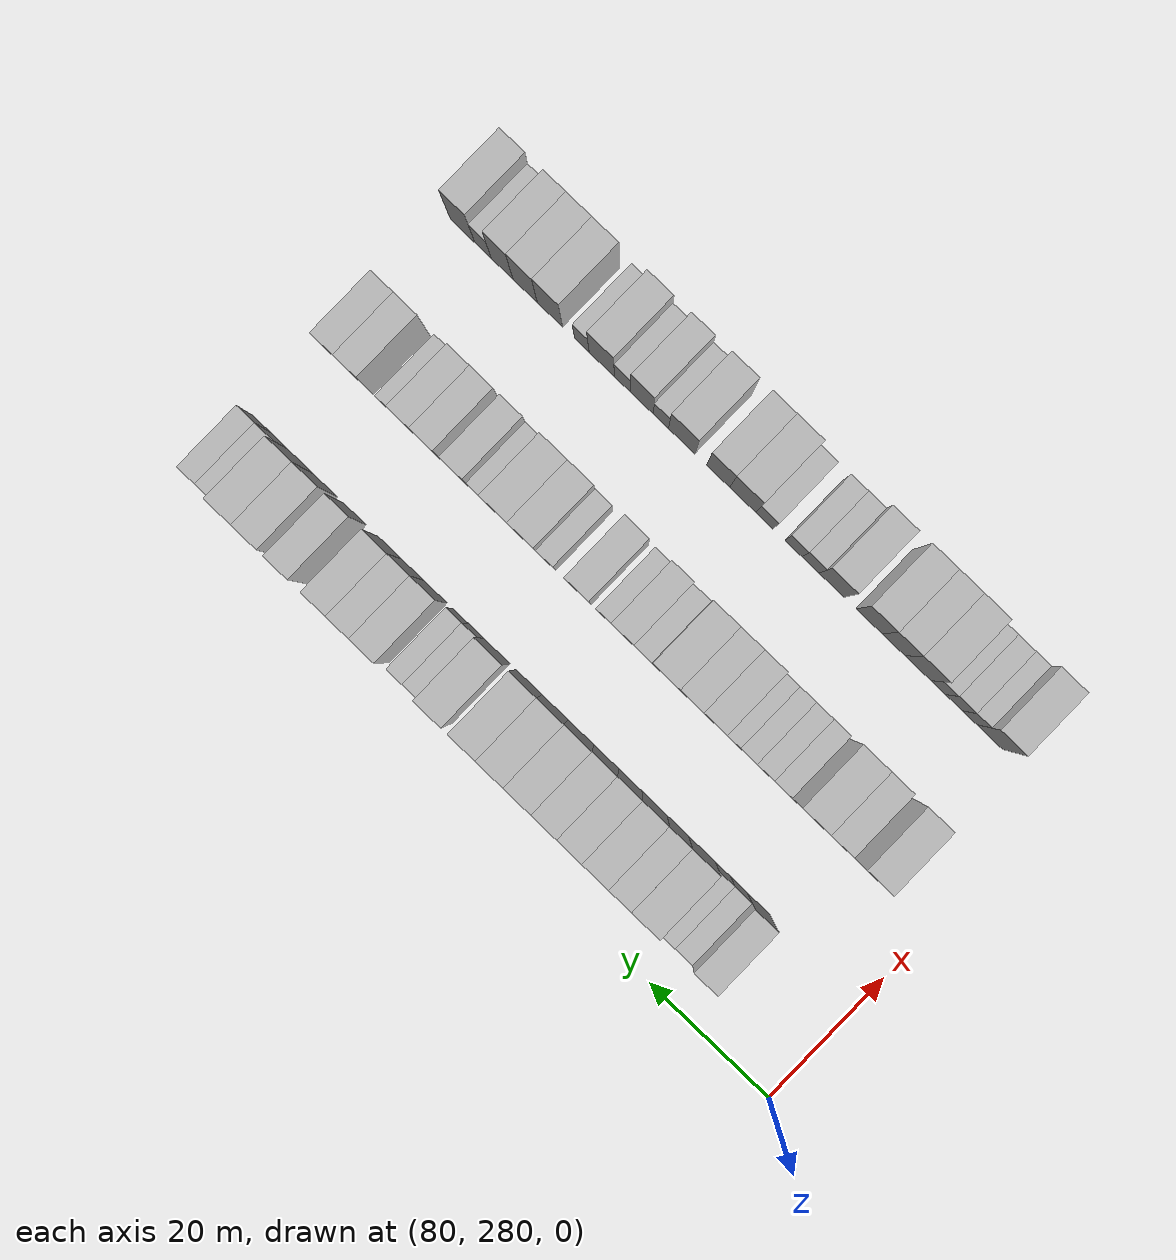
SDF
<sdf version="1.6">
 <world name="default">
  <model name="building_723">
   <static>1</static>
   <pose>91.0000 297.2292 0 0.000000 0.000000 0.000000</pose>
   <link name="link">
    <pose>0 0 4.50 0 0 0</pose>
    <collision name="collision"><geometry><box><size>10.0000 3.7799 9.0000</size></box></geometry></collision>
    <visual name="visual">
     <cast_shadows>0</cast_shadows>
     <geometry><box><size>10.0000 3.7799 9.0000</size></box></geometry>
     <material>
      <script>
       <uri>model://HANNAS_wall/materials/scripts</uri>
       <uri>model://HANNAS_wall/materials/textures</uri>
       <name>vrc/HANNAS_wall</name>
      </script>
     </material>
    </visual>
   </link>
  </model>
  <model name="building_724">
   <static>1</static>
   <pose>91.0000 300.5063 0 0.000000 0.000000 0.000000</pose>
   <link name="link">
    <pose>0 0 3.00 0 0 0</pose>
    <collision name="collision"><geometry><box><size>10.0000 2.7742 6.0000</size></box></geometry></collision>
    <visual name="visual">
     <cast_shadows>0</cast_shadows>
     <geometry><box><size>10.0000 2.7742 6.0000</size></box></geometry>
     <material>
      <script>
       <uri>model://HANNAS_wall/materials/scripts</uri>
       <uri>model://HANNAS_wall/materials/textures</uri>
       <name>vrc/HANNAS_wall</name>
      </script>
     </material>
    </visual>
   </link>
  </model>
  <model name="building_725">
   <static>1</static>
   <pose>91.0000 303.1688 0 0.000000 0.000000 0.000000</pose>
   <link name="link">
    <pose>0 0 3.00 0 0 0</pose>
    <collision name="collision"><geometry><box><size>10.0000 2.5508 6.0000</size></box></geometry></collision>
    <visual name="visual">
     <cast_shadows>0</cast_shadows>
     <geometry><box><size>10.0000 2.5508 6.0000</size></box></geometry>
     <material>
      <script>
       <uri>model://HANNAS_wall/materials/scripts</uri>
       <uri>model://HANNAS_wall/materials/textures</uri>
       <name>vrc/HANNAS_wall</name>
      </script>
     </material>
    </visual>
   </link>
  </model>
  <model name="building_726">
   <static>1</static>
   <pose>91.0000 306.6930 0 0.000000 0.000000 0.000000</pose>
   <link name="link">
    <pose>0 0 4.50 0 0 0</pose>
    <collision name="collision"><geometry><box><size>10.0000 4.4976 9.0000</size></box></geometry></collision>
    <visual name="visual">
     <cast_shadows>0</cast_shadows>
     <geometry><box><size>10.0000 4.4976 9.0000</size></box></geometry>
     <material>
      <script>
       <uri>model://HANNAS_wall/materials/scripts</uri>
       <uri>model://HANNAS_wall/materials/textures</uri>
       <name>vrc/HANNAS_wall</name>
      </script>
     </material>
    </visual>
   </link>
  </model>
  <model name="building_727">
   <static>1</static>
   <pose>91.0000 310.7659 0 0.000000 0.000000 0.000000</pose>
   <link name="link">
    <pose>0 0 4.50 0 0 0</pose>
    <collision name="collision"><geometry><box><size>10.0000 3.6481 9.0000</size></box></geometry></collision>
    <visual name="visual">
     <cast_shadows>0</cast_shadows>
     <geometry><box><size>10.0000 3.6481 9.0000</size></box></geometry>
     <material>
      <script>
       <uri>model://HANNAS_wall/materials/scripts</uri>
       <uri>model://HANNAS_wall/materials/textures</uri>
       <name>vrc/HANNAS_wall</name>
      </script>
     </material>
    </visual>
   </link>
  </model>
  <model name="building_728">
   <static>1</static>
   <pose>91.0000 314.7011 0 0.000000 0.000000 0.000000</pose>
   <link name="link">
    <pose>0 0 4.50 0 0 0</pose>
    <collision name="collision"><geometry><box><size>10.0000 4.2223 9.0000</size></box></geometry></collision>
    <visual name="visual">
     <cast_shadows>0</cast_shadows>
     <geometry><box><size>10.0000 4.2223 9.0000</size></box></geometry>
     <material>
      <script>
       <uri>model://HANNAS_wall/materials/scripts</uri>
       <uri>model://HANNAS_wall/materials/textures</uri>
       <name>vrc/HANNAS_wall</name>
      </script>
     </material>
    </visual>
   </link>
  </model>
  <model name="building_729">
   <static>1</static>
   <pose>91.0000 318.7914 0 0.000000 0.000000 0.000000</pose>
   <link name="link">
    <pose>0 0 4.50 0 0 0</pose>
    <collision name="collision"><geometry><box><size>10.0000 3.9583 9.0000</size></box></geometry></collision>
    <visual name="visual">
     <cast_shadows>0</cast_shadows>
     <geometry><box><size>10.0000 3.9583 9.0000</size></box></geometry>
     <material>
      <script>
       <uri>model://HANNAS_wall/materials/scripts</uri>
       <uri>model://HANNAS_wall/materials/textures</uri>
       <name>vrc/HANNAS_wall</name>
      </script>
     </material>
    </visual>
   </link>
  </model>
  <model name="building_730">
   <static>1</static>
   <pose>91.0000 322.8060 0 0.000000 0.000000 0.000000</pose>
   <link name="link">
    <pose>0 0 4.50 0 0 0</pose>
    <collision name="collision"><geometry><box><size>10.0000 4.0709 9.0000</size></box></geometry></collision>
    <visual name="visual">
     <cast_shadows>0</cast_shadows>
     <geometry><box><size>10.0000 4.0709 9.0000</size></box></geometry>
     <material>
      <script>
       <uri>model://HANNAS_wall/materials/scripts</uri>
       <uri>model://HANNAS_wall/materials/textures</uri>
       <name>vrc/HANNAS_wall</name>
      </script>
     </material>
    </visual>
   </link>
  </model>
  <model name="building_731">
   <static>1</static>
   <pose>91.0000 327.0451 0 0.000000 0.000000 0.000000</pose>
   <link name="link">
    <pose>0 0 4.50 0 0 0</pose>
    <collision name="collision"><geometry><box><size>10.0000 4.4074 9.0000</size></box></geometry></collision>
    <visual name="visual">
     <cast_shadows>0</cast_shadows>
     <geometry><box><size>10.0000 4.4074 9.0000</size></box></geometry>
     <material>
      <script>
       <uri>model://HANNAS_wall/materials/scripts</uri>
       <uri>model://HANNAS_wall/materials/textures</uri>
       <name>vrc/HANNAS_wall</name>
      </script>
     </material>
    </visual>
   </link>
  </model>
  <model name="building_732">
   <static>1</static>
   <pose>91.0000 331.4389 0 0.000000 0.000000 0.000000</pose>
   <link name="link">
    <pose>0 0 4.50 0 0 0</pose>
    <collision name="collision"><geometry><box><size>10.0000 4.3802 9.0000</size></box></geometry></collision>
    <visual name="visual">
     <cast_shadows>0</cast_shadows>
     <geometry><box><size>10.0000 4.3802 9.0000</size></box></geometry>
     <material>
      <script>
       <uri>model://HANNAS_wall/materials/scripts</uri>
       <uri>model://HANNAS_wall/materials/textures</uri>
       <name>vrc/HANNAS_wall</name>
      </script>
     </material>
    </visual>
   </link>
  </model>
  <model name="building_733">
   <static>1</static>
   <pose>91.0000 335.8297 0 0.000000 0.000000 0.000000</pose>
   <link name="link">
    <pose>0 0 4.50 0 0 0</pose>
    <collision name="collision"><geometry><box><size>10.0000 4.4014 9.0000</size></box></geometry></collision>
    <visual name="visual">
     <cast_shadows>0</cast_shadows>
     <geometry><box><size>10.0000 4.4014 9.0000</size></box></geometry>
     <material>
      <script>
       <uri>model://HANNAS_wall/materials/scripts</uri>
       <uri>model://HANNAS_wall/materials/textures</uri>
       <name>vrc/HANNAS_wall</name>
      </script>
     </material>
    </visual>
   </link>
  </model>
  <model name="building_734">
   <static>1</static>
   <pose>91.0000 341.2791 0 0.000000 0.000000 0.000000</pose>
   <link name="link">
    <pose>0 0 4.50 0 0 0</pose>
    <collision name="collision"><geometry><box><size>10.0000 4.4975 9.0000</size></box></geometry></collision>
    <visual name="visual">
     <cast_shadows>0</cast_shadows>
     <geometry><box><size>10.0000 4.4975 9.0000</size></box></geometry>
     <material>
      <script>
       <uri>model://HANNAS_wall/materials/scripts</uri>
       <uri>model://HANNAS_wall/materials/textures</uri>
       <name>vrc/HANNAS_wall</name>
      </script>
     </material>
    </visual>
   </link>
  </model>
  <model name="building_735">
   <static>1</static>
   <pose>91.0000 344.7778 0 0.000000 0.000000 0.000000</pose>
   <link name="link">
    <pose>0 0 3.00 0 0 0</pose>
    <collision name="collision"><geometry><box><size>10.0000 2.4998 6.0000</size></box></geometry></collision>
    <visual name="visual">
     <cast_shadows>0</cast_shadows>
     <geometry><box><size>10.0000 2.4998 6.0000</size></box></geometry>
     <material>
      <script>
       <uri>model://HANNAS_wall/materials/scripts</uri>
       <uri>model://HANNAS_wall/materials/textures</uri>
       <name>vrc/HANNAS_wall</name>
      </script>
     </material>
    </visual>
   </link>
  </model>
  <model name="building_736">
   <static>1</static>
   <pose>91.0000 347.3329 0 0.000000 0.000000 0.000000</pose>
   <link name="link">
    <pose>0 0 3.00 0 0 0</pose>
    <collision name="collision"><geometry><box><size>10.0000 2.6105 6.0000</size></box></geometry></collision>
    <visual name="visual">
     <cast_shadows>0</cast_shadows>
     <geometry><box><size>10.0000 2.6105 6.0000</size></box></geometry>
     <material>
      <script>
       <uri>model://HANNAS_wall/materials/scripts</uri>
       <uri>model://HANNAS_wall/materials/textures</uri>
       <name>vrc/HANNAS_wall</name>
      </script>
     </material>
    </visual>
   </link>
  </model>
  <model name="building_737">
   <static>1</static>
   <pose>91.0000 351.6538 0 0.000000 0.000000 0.000000</pose>
   <link name="link">
    <pose>0 0 4.50 0 0 0</pose>
    <collision name="collision"><geometry><box><size>10.0000 4.0313 9.0000</size></box></geometry></collision>
    <visual name="visual">
     <cast_shadows>0</cast_shadows>
     <geometry><box><size>10.0000 4.0313 9.0000</size></box></geometry>
     <material>
      <script>
       <uri>model://HANNAS_wall/materials/scripts</uri>
       <uri>model://HANNAS_wall/materials/textures</uri>
       <name>vrc/HANNAS_wall</name>
      </script>
     </material>
    </visual>
   </link>
  </model>
  <model name="building_738">
   <static>1</static>
   <pose>91.0000 355.5054 0 0.000000 0.000000 0.000000</pose>
   <link name="link">
    <pose>0 0 4.50 0 0 0</pose>
    <collision name="collision"><geometry><box><size>10.0000 3.6720 9.0000</size></box></geometry></collision>
    <visual name="visual">
     <cast_shadows>0</cast_shadows>
     <geometry><box><size>10.0000 3.6720 9.0000</size></box></geometry>
     <material>
      <script>
       <uri>model://HANNAS_wall/materials/scripts</uri>
       <uri>model://HANNAS_wall/materials/textures</uri>
       <name>vrc/HANNAS_wall</name>
      </script>
     </material>
    </visual>
   </link>
  </model>
  <model name="building_739">
   <static>1</static>
   <pose>91.0000 359.3488 0 0.000000 0.000000 0.000000</pose>
   <link name="link">
    <pose>0 0 4.50 0 0 0</pose>
    <collision name="collision"><geometry><box><size>10.0000 4.0148 9.0000</size></box></geometry></collision>
    <visual name="visual">
     <cast_shadows>0</cast_shadows>
     <geometry><box><size>10.0000 4.0148 9.0000</size></box></geometry>
     <material>
      <script>
       <uri>model://HANNAS_wall/materials/scripts</uri>
       <uri>model://HANNAS_wall/materials/textures</uri>
       <name>vrc/HANNAS_wall</name>
      </script>
     </material>
    </visual>
   </link>
  </model>
  <model name="building_740">
   <static>1</static>
   <pose>91.0000 365.3117 0 0.000000 0.000000 0.000000</pose>
   <link name="link">
    <pose>0 0 4.50 0 0 0</pose>
    <collision name="collision"><geometry><box><size>10.0000 3.9110 9.0000</size></box></geometry></collision>
    <visual name="visual">
     <cast_shadows>0</cast_shadows>
     <geometry><box><size>10.0000 3.9110 9.0000</size></box></geometry>
     <material>
      <script>
       <uri>model://HANNAS_wall/materials/scripts</uri>
       <uri>model://HANNAS_wall/materials/textures</uri>
       <name>vrc/HANNAS_wall</name>
      </script>
     </material>
    </visual>
   </link>
  </model>
  <model name="building_741">
   <static>1</static>
   <pose>91.0000 370.3312 0 0.000000 0.000000 0.000000</pose>
   <link name="link">
    <pose>0 0 4.50 0 0 0</pose>
    <collision name="collision"><geometry><box><size>10.0000 4.1280 9.0000</size></box></geometry></collision>
    <visual name="visual">
     <cast_shadows>0</cast_shadows>
     <geometry><box><size>10.0000 4.1280 9.0000</size></box></geometry>
     <material>
      <script>
       <uri>model://HANNAS_wall/materials/scripts</uri>
       <uri>model://HANNAS_wall/materials/textures</uri>
       <name>vrc/HANNAS_wall</name>
      </script>
     </material>
    </visual>
   </link>
  </model>
  <model name="building_742">
   <static>1</static>
   <pose>91.0000 374.5619 0 0.000000 0.000000 0.000000</pose>
   <link name="link">
    <pose>0 0 4.50 0 0 0</pose>
    <collision name="collision"><geometry><box><size>10.0000 4.3332 9.0000</size></box></geometry></collision>
    <visual name="visual">
     <cast_shadows>0</cast_shadows>
     <geometry><box><size>10.0000 4.3332 9.0000</size></box></geometry>
     <material>
      <script>
       <uri>model://HANNAS_wall/materials/scripts</uri>
       <uri>model://HANNAS_wall/materials/textures</uri>
       <name>vrc/HANNAS_wall</name>
      </script>
     </material>
    </visual>
   </link>
  </model>
  <model name="building_743">
   <static>1</static>
   <pose>91.0000 378.2214 0 0.000000 0.000000 0.000000</pose>
   <link name="link">
    <pose>0 0 3.00 0 0 0</pose>
    <collision name="collision"><geometry><box><size>10.0000 2.9857 6.0000</size></box></geometry></collision>
    <visual name="visual">
     <cast_shadows>0</cast_shadows>
     <geometry><box><size>10.0000 2.9857 6.0000</size></box></geometry>
     <material>
      <script>
       <uri>model://HANNAS_wall/materials/scripts</uri>
       <uri>model://HANNAS_wall/materials/textures</uri>
       <name>vrc/HANNAS_wall</name>
      </script>
     </material>
    </visual>
   </link>
  </model>
  <model name="building_744">
   <static>1</static>
   <pose>91.0000 381.1802 0 0.000000 0.000000 0.000000</pose>
   <link name="link">
    <pose>0 0 3.00 0 0 0</pose>
    <collision name="collision"><geometry><box><size>10.0000 2.9320 6.0000</size></box></geometry></collision>
    <visual name="visual">
     <cast_shadows>0</cast_shadows>
     <geometry><box><size>10.0000 2.9320 6.0000</size></box></geometry>
     <material>
      <script>
       <uri>model://HANNAS_wall/materials/scripts</uri>
       <uri>model://HANNAS_wall/materials/textures</uri>
       <name>vrc/HANNAS_wall</name>
      </script>
     </material>
    </visual>
   </link>
  </model>
  <model name="building_910">
   <static>1</static>
   <pose>113.0000 290.8914 0 0.000000 0.000000 0.000000</pose>
   <link name="link">
    <pose>0 0 4.50 0 0 0</pose>
    <collision name="collision"><geometry><box><size>10.0000 4.2353 9.0000</size></box></geometry></collision>
    <visual name="visual">
     <cast_shadows>0</cast_shadows>
     <geometry><box><size>10.0000 4.2353 9.0000</size></box></geometry>
     <material>
      <script>
       <uri>model://HANNAS_wall/materials/scripts</uri>
       <uri>model://HANNAS_wall/materials/textures</uri>
       <name>vrc/HANNAS_wall</name>
      </script>
     </material>
    </visual>
   </link>
  </model>
  <model name="building_911">
   <static>1</static>
   <pose>113.0000 296.8457 0 0.000000 0.000000 0.000000</pose>
   <link name="link">
    <pose>0 0 4.50 0 0 0</pose>
    <collision name="collision"><geometry><box><size>10.0000 3.6734 9.0000</size></box></geometry></collision>
    <visual name="visual">
     <cast_shadows>0</cast_shadows>
     <geometry><box><size>10.0000 3.6734 9.0000</size></box></geometry>
     <material>
      <script>
       <uri>model://HANNAS_wall/materials/scripts</uri>
       <uri>model://HANNAS_wall/materials/textures</uri>
       <name>vrc/HANNAS_wall</name>
      </script>
     </material>
    </visual>
   </link>
  </model>
  <model name="building_912">
   <static>1</static>
   <pose>113.0000 300.9306 0 0.000000 0.000000 0.000000</pose>
   <link name="link">
    <pose>0 0 4.50 0 0 0</pose>
    <collision name="collision"><geometry><box><size>10.0000 4.4964 9.0000</size></box></geometry></collision>
    <visual name="visual">
     <cast_shadows>0</cast_shadows>
     <geometry><box><size>10.0000 4.4964 9.0000</size></box></geometry>
     <material>
      <script>
       <uri>model://HANNAS_wall/materials/scripts</uri>
       <uri>model://HANNAS_wall/materials/textures</uri>
       <name>vrc/HANNAS_wall</name>
      </script>
     </material>
    </visual>
   </link>
  </model>
  <model name="building_913">
   <static>1</static>
   <pose>113.0000 305.6085 0 0.000000 0.000000 0.000000</pose>
   <link name="link">
    <pose>0 0 3.00 0 0 0</pose>
    <collision name="collision"><geometry><box><size>10.0000 2.8595 6.0000</size></box></geometry></collision>
    <visual name="visual">
     <cast_shadows>0</cast_shadows>
     <geometry><box><size>10.0000 2.8595 6.0000</size></box></geometry>
     <material>
      <script>
       <uri>model://HANNAS_wall/materials/scripts</uri>
       <uri>model://HANNAS_wall/materials/textures</uri>
       <name>vrc/HANNAS_wall</name>
      </script>
     </material>
    </visual>
   </link>
  </model>
  <model name="building_914">
   <static>1</static>
   <pose>113.0000 308.4415 0 0.000000 0.000000 0.000000</pose>
   <link name="link">
    <pose>0 0 3.00 0 0 0</pose>
    <collision name="collision"><geometry><box><size>10.0000 2.8064 6.0000</size></box></geometry></collision>
    <visual name="visual">
     <cast_shadows>0</cast_shadows>
     <geometry><box><size>10.0000 2.8064 6.0000</size></box></geometry>
     <material>
      <script>
       <uri>model://HANNAS_wall/materials/scripts</uri>
       <uri>model://HANNAS_wall/materials/textures</uri>
       <name>vrc/HANNAS_wall</name>
      </script>
     </material>
    </visual>
   </link>
  </model>
  <model name="building_915">
   <static>1</static>
   <pose>113.0000 311.1661 0 0.000000 0.000000 0.000000</pose>
   <link name="link">
    <pose>0 0 3.00 0 0 0</pose>
    <collision name="collision"><geometry><box><size>10.0000 2.6429 6.0000</size></box></geometry></collision>
    <visual name="visual">
     <cast_shadows>0</cast_shadows>
     <geometry><box><size>10.0000 2.6429 6.0000</size></box></geometry>
     <material>
      <script>
       <uri>model://HANNAS_wall/materials/scripts</uri>
       <uri>model://HANNAS_wall/materials/textures</uri>
       <name>vrc/HANNAS_wall</name>
      </script>
     </material>
    </visual>
   </link>
  </model>
  <model name="building_916">
   <static>1</static>
   <pose>113.0000 313.7511 0 0.000000 0.000000 0.000000</pose>
   <link name="link">
    <pose>0 0 3.00 0 0 0</pose>
    <collision name="collision"><geometry><box><size>10.0000 2.5272 6.0000</size></box></geometry></collision>
    <visual name="visual">
     <cast_shadows>0</cast_shadows>
     <geometry><box><size>10.0000 2.5272 6.0000</size></box></geometry>
     <material>
      <script>
       <uri>model://HANNAS_wall/materials/scripts</uri>
       <uri>model://HANNAS_wall/materials/textures</uri>
       <name>vrc/HANNAS_wall</name>
      </script>
     </material>
    </visual>
   </link>
  </model>
  <model name="building_917">
   <static>1</static>
   <pose>113.0000 316.8632 0 0.000000 0.000000 0.000000</pose>
   <link name="link">
    <pose>0 0 4.50 0 0 0</pose>
    <collision name="collision"><geometry><box><size>10.0000 3.6969 9.0000</size></box></geometry></collision>
    <visual name="visual">
     <cast_shadows>0</cast_shadows>
     <geometry><box><size>10.0000 3.6969 9.0000</size></box></geometry>
     <material>
      <script>
       <uri>model://HANNAS_wall/materials/scripts</uri>
       <uri>model://HANNAS_wall/materials/textures</uri>
       <name>vrc/HANNAS_wall</name>
      </script>
     </material>
    </visual>
   </link>
  </model>
  <model name="building_918">
   <static>1</static>
   <pose>113.0000 320.5728 0 0.000000 0.000000 0.000000</pose>
   <link name="link">
    <pose>0 0 4.50 0 0 0</pose>
    <collision name="collision"><geometry><box><size>10.0000 3.7225 9.0000</size></box></geometry></collision>
    <visual name="visual">
     <cast_shadows>0</cast_shadows>
     <geometry><box><size>10.0000 3.7225 9.0000</size></box></geometry>
     <material>
      <script>
       <uri>model://HANNAS_wall/materials/scripts</uri>
       <uri>model://HANNAS_wall/materials/textures</uri>
       <name>vrc/HANNAS_wall</name>
      </script>
     </material>
    </visual>
   </link>
  </model>
  <model name="building_919">
   <static>1</static>
   <pose>113.0000 324.6318 0 0.000000 0.000000 0.000000</pose>
   <link name="link">
    <pose>0 0 4.50 0 0 0</pose>
    <collision name="collision"><geometry><box><size>10.0000 4.3954 9.0000</size></box></geometry></collision>
    <visual name="visual">
     <cast_shadows>0</cast_shadows>
     <geometry><box><size>10.0000 4.3954 9.0000</size></box></geometry>
     <material>
      <script>
       <uri>model://HANNAS_wall/materials/scripts</uri>
       <uri>model://HANNAS_wall/materials/textures</uri>
       <name>vrc/HANNAS_wall</name>
      </script>
     </material>
    </visual>
   </link>
  </model>
  <model name="building_920">
   <static>1</static>
   <pose>113.0000 328.3044 0 0.000000 0.000000 0.000000</pose>
   <link name="link">
    <pose>0 0 3.00 0 0 0</pose>
    <collision name="collision"><geometry><box><size>10.0000 2.9498 6.0000</size></box></geometry></collision>
    <visual name="visual">
     <cast_shadows>0</cast_shadows>
     <geometry><box><size>10.0000 2.9498 6.0000</size></box></geometry>
     <material>
      <script>
       <uri>model://HANNAS_wall/materials/scripts</uri>
       <uri>model://HANNAS_wall/materials/textures</uri>
       <name>vrc/HANNAS_wall</name>
      </script>
     </material>
    </visual>
   </link>
  </model>
  <model name="building_921">
   <static>1</static>
   <pose>113.0000 331.5804 0 0.000000 0.000000 0.000000</pose>
   <link name="link">
    <pose>0 0 4.50 0 0 0</pose>
    <collision name="collision"><geometry><box><size>10.0000 3.6023 9.0000</size></box></geometry></collision>
    <visual name="visual">
     <cast_shadows>0</cast_shadows>
     <geometry><box><size>10.0000 3.6023 9.0000</size></box></geometry>
     <material>
      <script>
       <uri>model://HANNAS_wall/materials/scripts</uri>
       <uri>model://HANNAS_wall/materials/textures</uri>
       <name>vrc/HANNAS_wall</name>
      </script>
     </material>
    </visual>
   </link>
  </model>
  <model name="building_922">
   <static>1</static>
   <pose>113.0000 334.6447 0 0.000000 0.000000 0.000000</pose>
   <link name="link">
    <pose>0 0 3.00 0 0 0</pose>
    <collision name="collision"><geometry><box><size>10.0000 2.5262 6.0000</size></box></geometry></collision>
    <visual name="visual">
     <cast_shadows>0</cast_shadows>
     <geometry><box><size>10.0000 2.5262 6.0000</size></box></geometry>
     <material>
      <script>
       <uri>model://HANNAS_wall/materials/scripts</uri>
       <uri>model://HANNAS_wall/materials/textures</uri>
       <name>vrc/HANNAS_wall</name>
      </script>
     </material>
    </visual>
   </link>
  </model>
  <model name="building_923">
   <static>1</static>
   <pose>113.0000 338.9010 0 0.000000 0.000000 0.000000</pose>
   <link name="link">
    <pose>0 0 4.50 0 0 0</pose>
    <collision name="collision"><geometry><box><size>10.0000 3.9865 9.0000</size></box></geometry></collision>
    <visual name="visual">
     <cast_shadows>0</cast_shadows>
     <geometry><box><size>10.0000 3.9865 9.0000</size></box></geometry>
     <material>
      <script>
       <uri>model://HANNAS_wall/materials/scripts</uri>
       <uri>model://HANNAS_wall/materials/textures</uri>
       <name>vrc/HANNAS_wall</name>
      </script>
     </material>
    </visual>
   </link>
  </model>
  <model name="building_924">
   <static>1</static>
   <pose>113.0000 344.2953 0 0.000000 0.000000 0.000000</pose>
   <link name="link">
    <pose>0 0 3.00 0 0 0</pose>
    <collision name="collision"><geometry><box><size>10.0000 2.8021 6.0000</size></box></geometry></collision>
    <visual name="visual">
     <cast_shadows>0</cast_shadows>
     <geometry><box><size>10.0000 2.8021 6.0000</size></box></geometry>
     <material>
      <script>
       <uri>model://HANNAS_wall/materials/scripts</uri>
       <uri>model://HANNAS_wall/materials/textures</uri>
       <name>vrc/HANNAS_wall</name>
      </script>
     </material>
    </visual>
   </link>
  </model>
  <model name="building_925">
   <static>1</static>
   <pose>113.0000 347.8179 0 0.000000 0.000000 0.000000</pose>
   <link name="link">
    <pose>0 0 4.50 0 0 0</pose>
    <collision name="collision"><geometry><box><size>10.0000 4.2431 9.0000</size></box></geometry></collision>
    <visual name="visual">
     <cast_shadows>0</cast_shadows>
     <geometry><box><size>10.0000 4.2431 9.0000</size></box></geometry>
     <material>
      <script>
       <uri>model://HANNAS_wall/materials/scripts</uri>
       <uri>model://HANNAS_wall/materials/textures</uri>
       <name>vrc/HANNAS_wall</name>
      </script>
     </material>
    </visual>
   </link>
  </model>
  <model name="building_926">
   <static>1</static>
   <pose>113.0000 352.1730 0 0.000000 0.000000 0.000000</pose>
   <link name="link">
    <pose>0 0 4.50 0 0 0</pose>
    <collision name="collision"><geometry><box><size>10.0000 4.4671 9.0000</size></box></geometry></collision>
    <visual name="visual">
     <cast_shadows>0</cast_shadows>
     <geometry><box><size>10.0000 4.4671 9.0000</size></box></geometry>
     <material>
      <script>
       <uri>model://HANNAS_wall/materials/scripts</uri>
       <uri>model://HANNAS_wall/materials/textures</uri>
       <name>vrc/HANNAS_wall</name>
      </script>
     </material>
    </visual>
   </link>
  </model>
  <model name="building_927">
   <static>1</static>
   <pose>113.0000 355.7085 0 0.000000 0.000000 0.000000</pose>
   <link name="link">
    <pose>0 0 3.00 0 0 0</pose>
    <collision name="collision"><geometry><box><size>10.0000 2.6039 6.0000</size></box></geometry></collision>
    <visual name="visual">
     <cast_shadows>0</cast_shadows>
     <geometry><box><size>10.0000 2.6039 6.0000</size></box></geometry>
     <material>
      <script>
       <uri>model://HANNAS_wall/materials/scripts</uri>
       <uri>model://HANNAS_wall/materials/textures</uri>
       <name>vrc/HANNAS_wall</name>
      </script>
     </material>
    </visual>
   </link>
  </model>
  <model name="building_928">
   <static>1</static>
   <pose>113.0000 358.8611 0 0.000000 0.000000 0.000000</pose>
   <link name="link">
    <pose>0 0 4.50 0 0 0</pose>
    <collision name="collision"><geometry><box><size>10.0000 3.7013 9.0000</size></box></geometry></collision>
    <visual name="visual">
     <cast_shadows>0</cast_shadows>
     <geometry><box><size>10.0000 3.7013 9.0000</size></box></geometry>
     <material>
      <script>
       <uri>model://HANNAS_wall/materials/scripts</uri>
       <uri>model://HANNAS_wall/materials/textures</uri>
       <name>vrc/HANNAS_wall</name>
      </script>
     </material>
    </visual>
   </link>
  </model>
  <model name="building_929">
   <static>1</static>
   <pose>113.0000 363.5988 0 0.000000 0.000000 0.000000</pose>
   <link name="link">
    <pose>0 0 4.50 0 0 0</pose>
    <collision name="collision"><geometry><box><size>10.0000 3.7739 9.0000</size></box></geometry></collision>
    <visual name="visual">
     <cast_shadows>0</cast_shadows>
     <geometry><box><size>10.0000 3.7739 9.0000</size></box></geometry>
     <material>
      <script>
       <uri>model://HANNAS_wall/materials/scripts</uri>
       <uri>model://HANNAS_wall/materials/textures</uri>
       <name>vrc/HANNAS_wall</name>
      </script>
     </material>
    </visual>
   </link>
  </model>
  <model name="building_930">
   <static>1</static>
   <pose>113.0000 367.2993 0 0.000000 0.000000 0.000000</pose>
   <link name="link">
    <pose>0 0 4.50 0 0 0</pose>
    <collision name="collision"><geometry><box><size>10.0000 3.6272 9.0000</size></box></geometry></collision>
    <visual name="visual">
     <cast_shadows>0</cast_shadows>
     <geometry><box><size>10.0000 3.6272 9.0000</size></box></geometry>
     <material>
      <script>
       <uri>model://HANNAS_wall/materials/scripts</uri>
       <uri>model://HANNAS_wall/materials/textures</uri>
       <name>vrc/HANNAS_wall</name>
      </script>
     </material>
    </visual>
   </link>
  </model>
  <model name="building_931">
   <static>1</static>
   <pose>113.0000 370.4637 0 0.000000 0.000000 0.000000</pose>
   <link name="link">
    <pose>0 0 3.00 0 0 0</pose>
    <collision name="collision"><geometry><box><size>10.0000 2.7017 6.0000</size></box></geometry></collision>
    <visual name="visual">
     <cast_shadows>0</cast_shadows>
     <geometry><box><size>10.0000 2.7017 6.0000</size></box></geometry>
     <material>
      <script>
       <uri>model://HANNAS_wall/materials/scripts</uri>
       <uri>model://HANNAS_wall/materials/textures</uri>
       <name>vrc/HANNAS_wall</name>
      </script>
     </material>
    </visual>
   </link>
  </model>
  <model name="building_932">
   <static>1</static>
   <pose>113.0000 375.7045 0 0.000000 0.000000 0.000000</pose>
   <link name="link">
    <pose>0 0 4.50 0 0 0</pose>
    <collision name="collision"><geometry><box><size>10.0000 3.7798 9.0000</size></box></geometry></collision>
    <visual name="visual">
     <cast_shadows>0</cast_shadows>
     <geometry><box><size>10.0000 3.7798 9.0000</size></box></geometry>
     <material>
      <script>
       <uri>model://HANNAS_wall/materials/scripts</uri>
       <uri>model://HANNAS_wall/materials/textures</uri>
       <name>vrc/HANNAS_wall</name>
      </script>
     </material>
    </visual>
   </link>
  </model>
  <model name="building_933">
   <static>1</static>
   <pose>113.0000 379.4185 0 0.000000 0.000000 0.000000</pose>
   <link name="link">
    <pose>0 0 4.50 0 0 0</pose>
    <collision name="collision"><geometry><box><size>10.0000 3.6483 9.0000</size></box></geometry></collision>
    <visual name="visual">
     <cast_shadows>0</cast_shadows>
     <geometry><box><size>10.0000 3.6483 9.0000</size></box></geometry>
     <material>
      <script>
       <uri>model://HANNAS_wall/materials/scripts</uri>
       <uri>model://HANNAS_wall/materials/textures</uri>
       <name>vrc/HANNAS_wall</name>
      </script>
     </material>
    </visual>
   </link>
  </model>
  <model name="building_1107">
   <static>1</static>
   <pose>135.0000 290.9394 0 0.000000 0.000000 0.000000</pose>
   <link name="link">
    <pose>0 0 4.50 0 0 0</pose>
    <collision name="collision"><geometry><box><size>10.0000 4.3195 9.0000</size></box></geometry></collision>
    <visual name="visual">
     <cast_shadows>0</cast_shadows>
     <geometry><box><size>10.0000 4.3195 9.0000</size></box></geometry>
     <material>
      <script>
       <uri>model://HANNAS_wall/materials/scripts</uri>
       <uri>model://HANNAS_wall/materials/textures</uri>
       <name>vrc/HANNAS_wall</name>
      </script>
     </material>
    </visual>
   </link>
  </model>
  <model name="building_1108">
   <static>1</static>
   <pose>135.0000 294.3170 0 0.000000 0.000000 0.000000</pose>
   <link name="link">
    <pose>0 0 3.00 0 0 0</pose>
    <collision name="collision"><geometry><box><size>10.0000 2.4357 6.0000</size></box></geometry></collision>
    <visual name="visual">
     <cast_shadows>0</cast_shadows>
     <geometry><box><size>10.0000 2.4357 6.0000</size></box></geometry>
     <material>
      <script>
       <uri>model://HANNAS_wall/materials/scripts</uri>
       <uri>model://HANNAS_wall/materials/textures</uri>
       <name>vrc/HANNAS_wall</name>
      </script>
     </material>
    </visual>
   </link>
  </model>
  <model name="building_1109">
   <static>1</static>
   <pose>135.0000 296.9551 0 0.000000 0.000000 0.000000</pose>
   <link name="link">
    <pose>0 0 3.00 0 0 0</pose>
    <collision name="collision"><geometry><box><size>10.0000 2.8406 6.0000</size></box></geometry></collision>
    <visual name="visual">
     <cast_shadows>0</cast_shadows>
     <geometry><box><size>10.0000 2.8406 6.0000</size></box></geometry>
     <material>
      <script>
       <uri>model://HANNAS_wall/materials/scripts</uri>
       <uri>model://HANNAS_wall/materials/textures</uri>
       <name>vrc/HANNAS_wall</name>
      </script>
     </material>
    </visual>
   </link>
  </model>
  <model name="building_1110">
   <static>1</static>
   <pose>135.0000 299.5944 0 0.000000 0.000000 0.000000</pose>
   <link name="link">
    <pose>0 0 3.00 0 0 0</pose>
    <collision name="collision"><geometry><box><size>10.0000 2.4380 6.0000</size></box></geometry></collision>
    <visual name="visual">
     <cast_shadows>0</cast_shadows>
     <geometry><box><size>10.0000 2.4380 6.0000</size></box></geometry>
     <material>
      <script>
       <uri>model://HANNAS_wall/materials/scripts</uri>
       <uri>model://HANNAS_wall/materials/textures</uri>
       <name>vrc/HANNAS_wall</name>
      </script>
     </material>
    </visual>
   </link>
  </model>
  <model name="building_1111">
   <static>1</static>
   <pose>135.0000 302.9807 0 0.000000 0.000000 0.000000</pose>
   <link name="link">
    <pose>0 0 4.50 0 0 0</pose>
    <collision name="collision"><geometry><box><size>10.0000 4.3346 9.0000</size></box></geometry></collision>
    <visual name="visual">
     <cast_shadows>0</cast_shadows>
     <geometry><box><size>10.0000 4.3346 9.0000</size></box></geometry>
     <material>
      <script>
       <uri>model://HANNAS_wall/materials/scripts</uri>
       <uri>model://HANNAS_wall/materials/textures</uri>
       <name>vrc/HANNAS_wall</name>
      </script>
     </material>
    </visual>
   </link>
  </model>
  <model name="building_1112">
   <static>1</static>
   <pose>135.0000 307.1070 0 0.000000 0.000000 0.000000</pose>
   <link name="link">
    <pose>0 0 4.50 0 0 0</pose>
    <collision name="collision"><geometry><box><size>10.0000 3.9181 9.0000</size></box></geometry></collision>
    <visual name="visual">
     <cast_shadows>0</cast_shadows>
     <geometry><box><size>10.0000 3.9181 9.0000</size></box></geometry>
     <material>
      <script>
       <uri>model://HANNAS_wall/materials/scripts</uri>
       <uri>model://HANNAS_wall/materials/textures</uri>
       <name>vrc/HANNAS_wall</name>
      </script>
     </material>
    </visual>
   </link>
  </model>
  <model name="building_1113">
   <static>1</static>
   <pose>135.0000 311.2235 0 0.000000 0.000000 0.000000</pose>
   <link name="link">
    <pose>0 0 4.50 0 0 0</pose>
    <collision name="collision"><geometry><box><size>10.0000 4.3148 9.0000</size></box></geometry></collision>
    <visual name="visual">
     <cast_shadows>0</cast_shadows>
     <geometry><box><size>10.0000 4.3148 9.0000</size></box></geometry>
     <material>
      <script>
       <uri>model://HANNAS_wall/materials/scripts</uri>
       <uri>model://HANNAS_wall/materials/textures</uri>
       <name>vrc/HANNAS_wall</name>
      </script>
     </material>
    </visual>
   </link>
  </model>
  <model name="building_1114">
   <static>1</static>
   <pose>135.0000 317.4974 0 0.000000 0.000000 0.000000</pose>
   <link name="link">
    <pose>0 0 4.50 0 0 0</pose>
    <collision name="collision"><geometry><box><size>10.0000 4.2330 9.0000</size></box></geometry></collision>
    <visual name="visual">
     <cast_shadows>0</cast_shadows>
     <geometry><box><size>10.0000 4.2330 9.0000</size></box></geometry>
     <material>
      <script>
       <uri>model://HANNAS_wall/materials/scripts</uri>
       <uri>model://HANNAS_wall/materials/textures</uri>
       <name>vrc/HANNAS_wall</name>
      </script>
     </material>
    </visual>
   </link>
  </model>
  <model name="building_1115">
   <static>1</static>
   <pose>135.0000 321.0583 0 0.000000 0.000000 0.000000</pose>
   <link name="link">
    <pose>0 0 3.00 0 0 0</pose>
    <collision name="collision"><geometry><box><size>10.0000 2.8887 6.0000</size></box></geometry></collision>
    <visual name="visual">
     <cast_shadows>0</cast_shadows>
     <geometry><box><size>10.0000 2.8887 6.0000</size></box></geometry>
     <material>
      <script>
       <uri>model://HANNAS_wall/materials/scripts</uri>
       <uri>model://HANNAS_wall/materials/textures</uri>
       <name>vrc/HANNAS_wall</name>
      </script>
     </material>
    </visual>
   </link>
  </model>
  <model name="building_1116">
   <static>1</static>
   <pose>135.0000 323.9358 0 0.000000 0.000000 0.000000</pose>
   <link name="link">
    <pose>0 0 3.00 0 0 0</pose>
    <collision name="collision"><geometry><box><size>10.0000 2.8664 6.0000</size></box></geometry></collision>
    <visual name="visual">
     <cast_shadows>0</cast_shadows>
     <geometry><box><size>10.0000 2.8664 6.0000</size></box></geometry>
     <material>
      <script>
       <uri>model://HANNAS_wall/materials/scripts</uri>
       <uri>model://HANNAS_wall/materials/textures</uri>
       <name>vrc/HANNAS_wall</name>
      </script>
     </material>
    </visual>
   </link>
  </model>
  <model name="building_1117">
   <static>1</static>
   <pose>135.0000 328.8211 0 0.000000 0.000000 0.000000</pose>
   <link name="link">
    <pose>0 0 3.00 0 0 0</pose>
    <collision name="collision"><geometry><box><size>10.0000 2.9042 6.0000</size></box></geometry></collision>
    <visual name="visual">
     <cast_shadows>0</cast_shadows>
     <geometry><box><size>10.0000 2.9042 6.0000</size></box></geometry>
     <material>
      <script>
       <uri>model://HANNAS_wall/materials/scripts</uri>
       <uri>model://HANNAS_wall/materials/textures</uri>
       <name>vrc/HANNAS_wall</name>
      </script>
     </material>
    </visual>
   </link>
  </model>
  <model name="building_1118">
   <static>1</static>
   <pose>135.0000 332.4759 0 0.000000 0.000000 0.000000</pose>
   <link name="link">
    <pose>0 0 4.50 0 0 0</pose>
    <collision name="collision"><geometry><box><size>10.0000 4.4053 9.0000</size></box></geometry></collision>
    <visual name="visual">
     <cast_shadows>0</cast_shadows>
     <geometry><box><size>10.0000 4.4053 9.0000</size></box></geometry>
     <material>
      <script>
       <uri>model://HANNAS_wall/materials/scripts</uri>
       <uri>model://HANNAS_wall/materials/textures</uri>
       <name>vrc/HANNAS_wall</name>
      </script>
     </material>
    </visual>
   </link>
  </model>
  <model name="building_1119">
   <static>1</static>
   <pose>135.0000 336.6281 0 0.000000 0.000000 0.000000</pose>
   <link name="link">
    <pose>0 0 4.50 0 0 0</pose>
    <collision name="collision"><geometry><box><size>10.0000 3.8992 9.0000</size></box></geometry></collision>
    <visual name="visual">
     <cast_shadows>0</cast_shadows>
     <geometry><box><size>10.0000 3.8992 9.0000</size></box></geometry>
     <material>
      <script>
       <uri>model://HANNAS_wall/materials/scripts</uri>
       <uri>model://HANNAS_wall/materials/textures</uri>
       <name>vrc/HANNAS_wall</name>
      </script>
     </material>
    </visual>
   </link>
  </model>
  <model name="building_1120">
   <static>1</static>
   <pose>135.0000 342.8043 0 0.000000 0.000000 0.000000</pose>
   <link name="link">
    <pose>0 0 4.50 0 0 0</pose>
    <collision name="collision"><geometry><box><size>10.0000 4.4532 9.0000</size></box></geometry></collision>
    <visual name="visual">
     <cast_shadows>0</cast_shadows>
     <geometry><box><size>10.0000 4.4532 9.0000</size></box></geometry>
     <material>
      <script>
       <uri>model://HANNAS_wall/materials/scripts</uri>
       <uri>model://HANNAS_wall/materials/textures</uri>
       <name>vrc/HANNAS_wall</name>
      </script>
     </material>
    </visual>
   </link>
  </model>
  <model name="building_1121">
   <static>1</static>
   <pose>135.0000 346.3328 0 0.000000 0.000000 0.000000</pose>
   <link name="link">
    <pose>0 0 3.00 0 0 0</pose>
    <collision name="collision"><geometry><box><size>10.0000 2.6037 6.0000</size></box></geometry></collision>
    <visual name="visual">
     <cast_shadows>0</cast_shadows>
     <geometry><box><size>10.0000 2.6037 6.0000</size></box></geometry>
     <material>
      <script>
       <uri>model://HANNAS_wall/materials/scripts</uri>
       <uri>model://HANNAS_wall/materials/textures</uri>
       <name>vrc/HANNAS_wall</name>
      </script>
     </material>
    </visual>
   </link>
  </model>
  <model name="building_1122">
   <static>1</static>
   <pose>135.0000 349.5428 0 0.000000 0.000000 0.000000</pose>
   <link name="link">
    <pose>0 0 4.50 0 0 0</pose>
    <collision name="collision"><geometry><box><size>10.0000 3.8163 9.0000</size></box></geometry></collision>
    <visual name="visual">
     <cast_shadows>0</cast_shadows>
     <geometry><box><size>10.0000 3.8163 9.0000</size></box></geometry>
     <material>
      <script>
       <uri>model://HANNAS_wall/materials/scripts</uri>
       <uri>model://HANNAS_wall/materials/textures</uri>
       <name>vrc/HANNAS_wall</name>
      </script>
     </material>
    </visual>
   </link>
  </model>
  <model name="building_1123">
   <static>1</static>
   <pose>135.0000 352.8328 0 0.000000 0.000000 0.000000</pose>
   <link name="link">
    <pose>0 0 3.00 0 0 0</pose>
    <collision name="collision"><geometry><box><size>10.0000 2.7638 6.0000</size></box></geometry></collision>
    <visual name="visual">
     <cast_shadows>0</cast_shadows>
     <geometry><box><size>10.0000 2.7638 6.0000</size></box></geometry>
     <material>
      <script>
       <uri>model://HANNAS_wall/materials/scripts</uri>
       <uri>model://HANNAS_wall/materials/textures</uri>
       <name>vrc/HANNAS_wall</name>
      </script>
     </material>
    </visual>
   </link>
  </model>
  <model name="building_1124">
   <static>1</static>
   <pose>135.0000 356.3526 0 0.000000 0.000000 0.000000</pose>
   <link name="link">
    <pose>0 0 4.50 0 0 0</pose>
    <collision name="collision"><geometry><box><size>10.0000 4.2758 9.0000</size></box></geometry></collision>
    <visual name="visual">
     <cast_shadows>0</cast_shadows>
     <geometry><box><size>10.0000 4.2758 9.0000</size></box></geometry>
     <material>
      <script>
       <uri>model://HANNAS_wall/materials/scripts</uri>
       <uri>model://HANNAS_wall/materials/textures</uri>
       <name>vrc/HANNAS_wall</name>
      </script>
     </material>
    </visual>
   </link>
  </model>
  <model name="building_1125">
   <static>1</static>
   <pose>135.0000 359.7270 0 0.000000 0.000000 0.000000</pose>
   <link name="link">
    <pose>0 0 3.00 0 0 0</pose>
    <collision name="collision"><geometry><box><size>10.0000 2.4730 6.0000</size></box></geometry></collision>
    <visual name="visual">
     <cast_shadows>0</cast_shadows>
     <geometry><box><size>10.0000 2.4730 6.0000</size></box></geometry>
     <material>
      <script>
       <uri>model://HANNAS_wall/materials/scripts</uri>
       <uri>model://HANNAS_wall/materials/textures</uri>
       <name>vrc/HANNAS_wall</name>
      </script>
     </material>
    </visual>
   </link>
  </model>
  <model name="building_1126">
   <static>1</static>
   <pose>135.0000 365.1146 0 0.000000 0.000000 0.000000</pose>
   <link name="link">
    <pose>0 0 4.50 0 0 0</pose>
    <collision name="collision"><geometry><box><size>10.0000 4.3023 9.0000</size></box></geometry></collision>
    <visual name="visual">
     <cast_shadows>0</cast_shadows>
     <geometry><box><size>10.0000 4.3023 9.0000</size></box></geometry>
     <material>
      <script>
       <uri>model://HANNAS_wall/materials/scripts</uri>
       <uri>model://HANNAS_wall/materials/textures</uri>
       <name>vrc/HANNAS_wall</name>
      </script>
     </material>
    </visual>
   </link>
  </model>
  <model name="building_1127">
   <static>1</static>
   <pose>135.0000 369.3321 0 0.000000 0.000000 0.000000</pose>
   <link name="link">
    <pose>0 0 4.50 0 0 0</pose>
    <collision name="collision"><geometry><box><size>10.0000 4.1327 9.0000</size></box></geometry></collision>
    <visual name="visual">
     <cast_shadows>0</cast_shadows>
     <geometry><box><size>10.0000 4.1327 9.0000</size></box></geometry>
     <material>
      <script>
       <uri>model://HANNAS_wall/materials/scripts</uri>
       <uri>model://HANNAS_wall/materials/textures</uri>
       <name>vrc/HANNAS_wall</name>
      </script>
     </material>
    </visual>
   </link>
  </model>
  <model name="building_1128">
   <static>1</static>
   <pose>135.0000 373.2492 0 0.000000 0.000000 0.000000</pose>
   <link name="link">
    <pose>0 0 4.50 0 0 0</pose>
    <collision name="collision"><geometry><box><size>10.0000 3.7015 9.0000</size></box></geometry></collision>
    <visual name="visual">
     <cast_shadows>0</cast_shadows>
     <geometry><box><size>10.0000 3.7015 9.0000</size></box></geometry>
     <material>
      <script>
       <uri>model://HANNAS_wall/materials/scripts</uri>
       <uri>model://HANNAS_wall/materials/textures</uri>
       <name>vrc/HANNAS_wall</name>
      </script>
     </material>
    </visual>
   </link>
  </model>
  <model name="building_1129">
   <static>1</static>
   <pose>135.0000 376.4949 0 0.000000 0.000000 0.000000</pose>
   <link name="link">
    <pose>0 0 3.00 0 0 0</pose>
    <collision name="collision"><geometry><box><size>10.0000 2.7899 6.0000</size></box></geometry></collision>
    <visual name="visual">
     <cast_shadows>0</cast_shadows>
     <geometry><box><size>10.0000 2.7899 6.0000</size></box></geometry>
     <material>
      <script>
       <uri>model://HANNAS_wall/materials/scripts</uri>
       <uri>model://HANNAS_wall/materials/textures</uri>
       <name>vrc/HANNAS_wall</name>
      </script>
     </material>
    </visual>
   </link>
  </model>
  <model name="building_1130">
   <static>1</static>
   <pose>135.0000 379.9593 0 0.000000 0.000000 0.000000</pose>
   <link name="link">
    <pose>0 0 4.50 0 0 0</pose>
    <collision name="collision"><geometry><box><size>10.0000 4.1388 9.0000</size></box></geometry></collision>
    <visual name="visual">
     <cast_shadows>0</cast_shadows>
     <geometry><box><size>10.0000 4.1388 9.0000</size></box></geometry>
     <material>
      <script>
       <uri>model://HANNAS_wall/materials/scripts</uri>
       <uri>model://HANNAS_wall/materials/textures</uri>
       <name>vrc/HANNAS_wall</name>
      </script>
     </material>
    </visual>
   </link>
  </model>
 </world>
</sdf>
